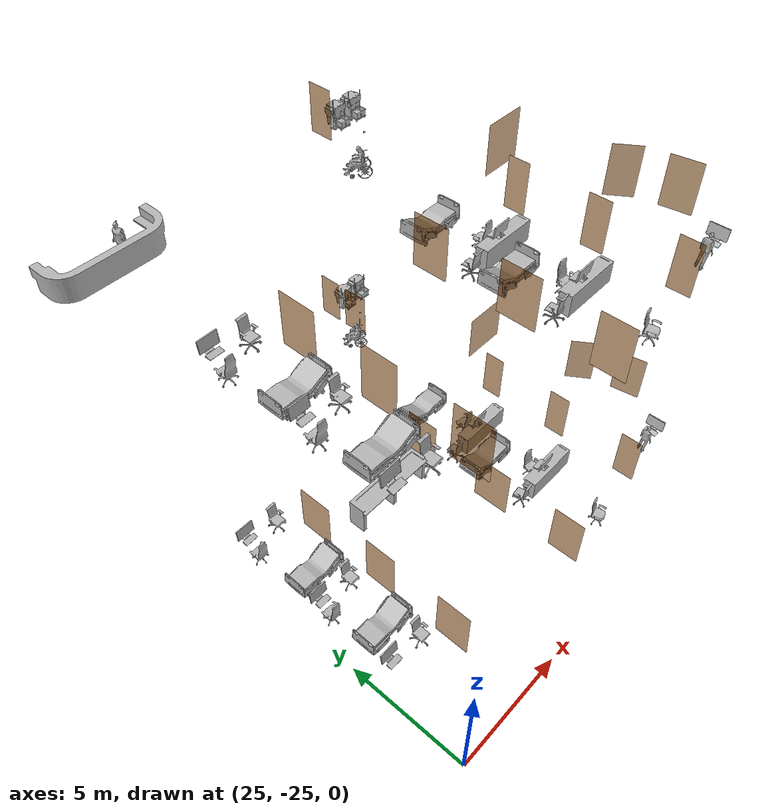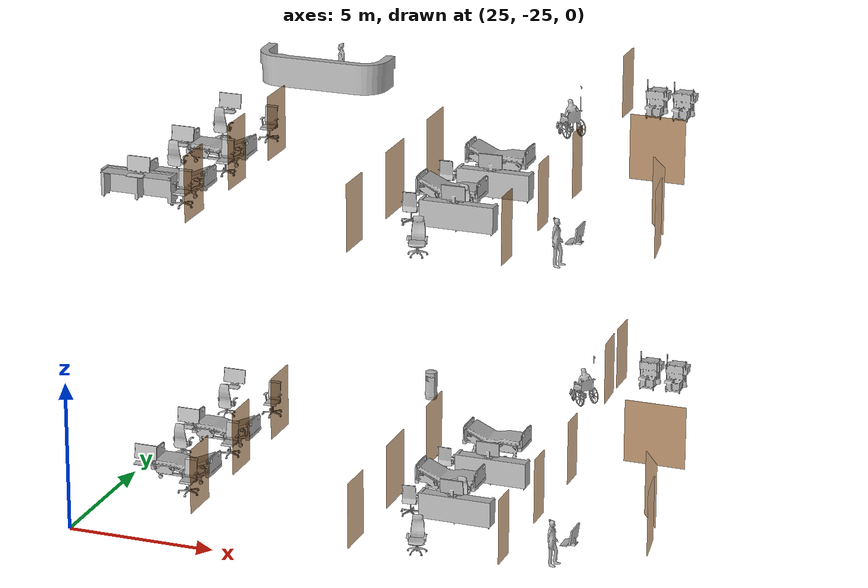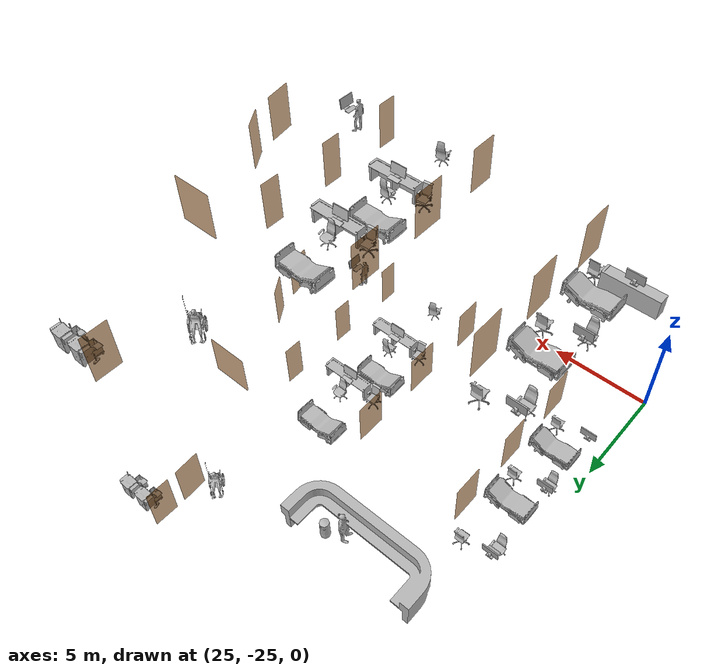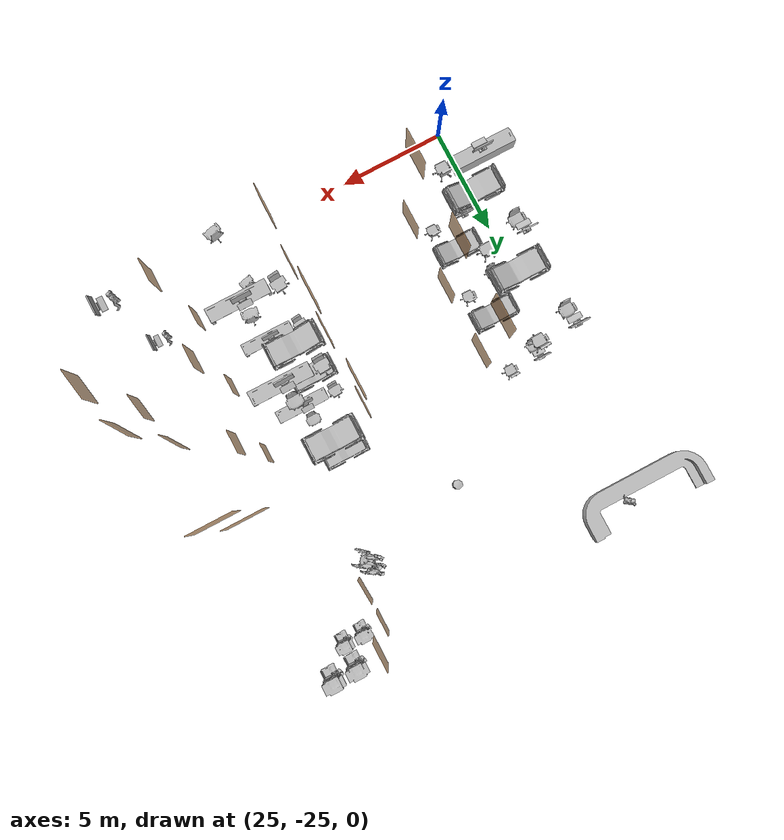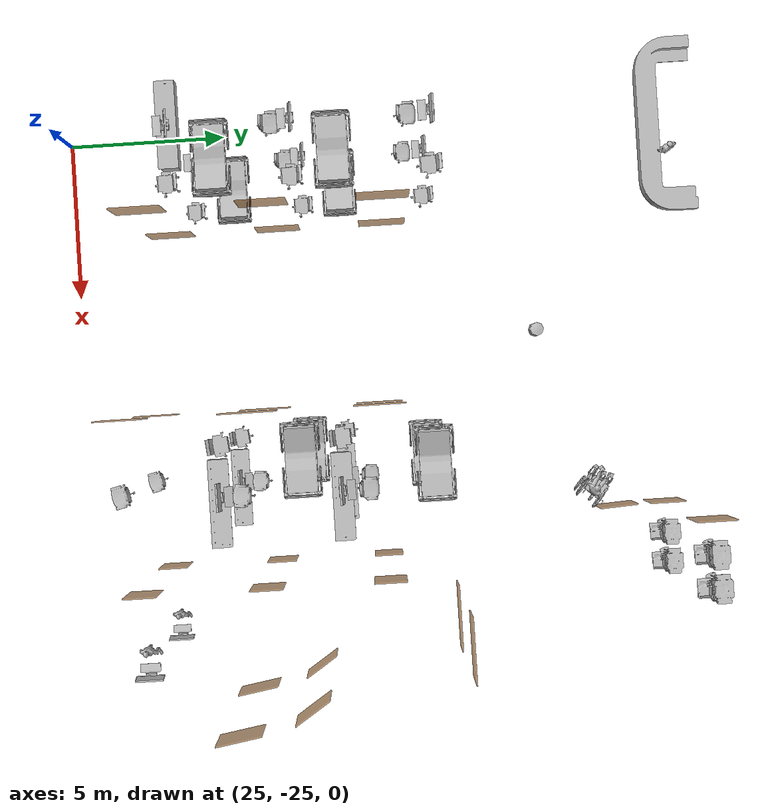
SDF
<sdf version="1.7">
 <world name="sim_world">
  <include>
   <name>OpenRobotics/CGMVanguard_14</name>
   <uri>model://CGMVanguard</uri>
   <pose>26.872747202030713 -19.778627745086744 0.0 0 0 -3.1416</pose>
   <static>True</static>
  </include>
  <include>
   <name>OpenRobotics/CGMVanguard_15</name>
   <uri>model://CGMVanguard</uri>
   <pose>26.839310026537465 -16.334087150494224 0.0 0 0 -3.1416</pose>
   <static>True</static>
  </include>
  <include>
   <name>OpenRobotics/CGMVanguard_19</name>
   <uri>model://CGMVanguard</uri>
   <pose>35.31313026422064 -17.750913426406694 0.0 0 0 0.0</pose>
   <static>True</static>
  </include>
  <include>
   <name>OpenRobotics/CGMVanguard_20</name>
   <uri>model://CGMVanguard</uri>
   <pose>35.63772931810318 -13.985596707818942 0.0 0 0 0.0</pose>
   <static>True</static>
  </include>
  <include>
   <name>OpenRobotics/NurseTable_27</name>
   <uri>model://NurseTable</uri>
   <pose>36.48273143340644 -16.664339833083357 0.0 0 0 -3.1416</pose>
   <static>True</static>
  </include>
  <include>
   <name>OpenRobotics/NurseTable_28</name>
   <uri>model://NurseTable</uri>
   <pose>36.470858813122604 -20.10966116687821 0.0 0 0 -3.1416</pose>
   <static>True</static>
  </include>
  <include>
   <name>OpenRobotics/DeskChair_23</name>
   <uri>model://DeskChair</uri>
   <pose>25.907026652821067 -18.080816122456845 0.0 0 0 1.5708</pose>
   <static>True</static>
  </include>
  <include>
   <name>OpenRobotics/DeskChair_26</name>
   <uri>model://DeskChair</uri>
   <pose>25.87692781046885 -14.223318333910248 0.0 0 0 1.5708</pose>
   <static>True</static>
  </include>
  <include>
   <name>OpenRobotics/DeskChair_27</name>
   <uri>model://DeskChair</uri>
   <pose>36.313041806084414 -19.441375331718028 0.0 0 0 -1.6777</pose>
   <static>True</static>
  </include>
  <include>
   <name>OpenRobotics/DeskChair_28</name>
   <uri>model://DeskChair</uri>
   <pose>36.12706434367912 -22.8408484289066 0.0 0 0 -1.3396</pose>
   <static>True</static>
  </include>
  <include>
   <name>OpenRobotics/OfficeChairGrey_25</name>
   <uri>model://OfficeChairGrey</uri>
   <pose>34.84872504903661 -19.89651936463984 0.0 0 0 -3.0358</pose>
   <static>True</static>
  </include>
  <include>
   <name>OpenRobotics/OfficeChairGrey_26</name>
   <uri>model://OfficeChairGrey</uri>
   <pose>34.83639475404795 -16.457578554670988 0.0 0 0 -3.0878</pose>
   <static>True</static>
  </include>
  <include>
   <name>OpenRobotics/OfficeChairGrey_27</name>
   <uri>model://OfficeChairGrey</uri>
   <pose>27.337287027422047 -13.74712126456676 0.0 0 0 0.0294</pose>
   <static>True</static>
  </include>
  <include>
   <name>OpenRobotics/OfficeChairGrey_39</name>
   <uri>model://OfficeChairGrey</uri>
   <pose>27.426022076074023 -21.14637513941773 0.0 0 0 0.0101</pose>
   <static>True</static>
  </include>
  <include>
   <name>OpenRobotics/OfficeChairGrey_40</name>
   <uri>model://OfficeChairGrey</uri>
   <pose>27.414930194992525 -17.663066805122895 0.0 0 0 0.0035</pose>
   <static>True</static>
  </include>
  <include>
   <name>OpenRobotics/MonitorAndKeyboard_24</name>
   <uri>model://MonitorAndKeyboard</uri>
   <pose>25.850571131879565 -13.500649975000973 0.86 0 0 1.5708</pose>
   <static>True</static>
  </include>
  <include>
   <name>OpenRobotics/MonitorAndKeyboard_25</name>
   <uri>model://MonitorAndKeyboard</uri>
   <pose>25.844405984385237 -17.44499826929735 0.86 0 0 1.5708</pose>
   <static>True</static>
  </include>
  <include>
   <name>OpenRobotics/MonitorAndKeyboard_26</name>
   <uri>model://MonitorAndKeyboard</uri>
   <pose>25.832075689396586 -20.914791738779297 0.86 0 0 1.5708</pose>
   <static>True</static>
  </include>
  <include>
   <name>OpenRobotics/MonitorAndKeyboard_42</name>
   <uri>model://MonitorAndKeyboard</uri>
   <pose>36.30639206184381 -20.090115764778293 0.86 0 0 -1.5616</pose>
   <static>True</static>
  </include>
  <include>
   <name>OpenRobotics/MonitorAndKeyboard_43</name>
   <uri>model://MonitorAndKeyboard</uri>
   <pose>36.32922195300184 -16.652521056882442 0.86 0 0 -1.5427</pose>
   <static>True</static>
  </include>
  <include>
   <name>OpenRobotics/MonitorAndKeyboard_50</name>
   <uri>model://MonitorAndKeyboard</uri>
   <pose>41.185473635629435 -22.269643475250973 0.86 0 0 0.0</pose>
   <static>True</static>
  </include>
  <include>
   <name>OpenRobotics/DeskChair_49</name>
   <uri>model://DeskChair</uri>
   <pose>36.319933848698156 -15.891569555017128 0.0 0 0 1.5708</pose>
   <static>True</static>
  </include>
  <include>
   <name>OpenRobotics/LitterBin_6</name>
   <uri>model://LitterBin</uri>
   <pose>31.935140956117102 -10.197261643782939 0.0 0 0 1.5708</pose>
   <static>True</static>
  </include>
  <include>
   <name>OpenRobotics/PatientWheelChair_6</name>
   <uri>model://PatientWheelChair</uri>
   <pose>37.023164493673356 -8.670889581169963 0.0 0 0 -2.2818</pose>
   <static>True</static>
  </include>
  <include>
   <name>OpenRobotics/Scrubs_6</name>
   <uri>model://Scrubs</uri>
   <pose>40.47298180839202 -22.30929964232147 0.0 0 0 0.0</pose>
   <static>True</static>
  </include>
  <include>
   <name>OpenRobotics/MopCart2</name>
   <uri>model://MopCart2</uri>
   <pose>39.73055267105114 -6.423976000923047 0.0 0 0 1.5708</pose>
   <static>True</static>
  </include>
  <include>
   <name>OpenRobotics/MopCart2_2</name>
   <uri>model://MopCart2</uri>
   <pose>38.77756624745206 -6.447505865159038 0.0 0 0 1.5708</pose>
   <static>True</static>
  </include>
  <model name="L1_left_consult_rm_3_outer">
   <pose>28.179085419791573 -21.845877081650727 0.0 0 0 1.5707963267948966</pose>
   <static>true</static>
   <link name="right">
    <pose>0 0 1.11 0 0 0</pose>
    <visual name="right_visual">
     <geometry><box><size>1.4299792315680138 0.03 2.2</size></box></geometry>
     <material>
      <ambient>0.5 0.25 0 0.6</ambient>
      <diffuse>0.5 0.25 0 0.6</diffuse>
      <pbr><metal><metalness>0.0</metalness></metal></pbr>
     </material>
    </visual>
    <collision name="right_collision">
     <geometry><box><size>1.4299792315680138 0.03 2.2</size></box></geometry>
     <surface><contact><collide_bitmask>0x02</collide_bitmask></contact></surface>
    </collision>
    <inertial>
     <mass>50.0</mass>
     <inertia><ixx>20.17041666666667</ixx><iyy>28.686835844649366</iyy><izz>8.523919177982698</izz></inertia>
    </inertial>
   </link>
   <joint name="right_joint" type="prismatic">
    <parent>world</parent>
    <child>right</child>
    <axis>
     <xyz>1 0 0</xyz>
     <limit><lower>0.0</lower><upper>1.4399792315680138</upper><effort>500.0</effort></limit>
    </axis>
   </joint>
  </model>
  <model name="L1_left_consult_rm_2_outer">
   <pose>28.179085419791573 -18.38420060766895 0.0 0 0 1.5707963267948966</pose>
   <static>true</static>
   <link name="right">
    <pose>0 0 1.11 0 0 0</pose>
    <visual name="right_visual">
     <geometry><box><size>1.3918306988192783 0.03 2.2</size></box></geometry>
     <material>
      <ambient>0.5 0.25 0 0.6</ambient>
      <diffuse>0.5 0.25 0 0.6</diffuse>
      <pbr><metal><metalness>0.0</metalness></metal></pbr>
     </material>
    </visual>
    <collision name="right_collision">
     <geometry><box><size>1.3918306988192783 0.03 2.2</size></box></geometry>
     <surface><contact><collide_bitmask>0x02</collide_bitmask></contact></surface>
    </collision>
    <inertial>
     <mass>50.0</mass>
     <inertia><ixx>20.17041666666667</ixx><iyy>28.23830289239901</iyy><izz>8.075386225732336</izz></inertia>
    </inertial>
   </link>
   <joint name="right_joint" type="prismatic">
    <parent>world</parent>
    <child>right</child>
    <axis>
     <xyz>1 0 0</xyz>
     <limit><lower>0.0</lower><upper>1.4018306988192784</upper><effort>500.0</effort></limit>
    </axis>
   </joint>
  </model>
  <model name="L1_left_consult_rm_1_outer">
   <pose>28.179085419791573 -15.017895465559029 0.0 0 0 -1.5707963267948966</pose>
   <static>true</static>
   <link name="right">
    <pose>0 0 1.11 0 0 0</pose>
    <visual name="right_visual">
     <geometry><box><size>1.4871885696703975 0.03 2.2</size></box></geometry>
     <material>
      <ambient>0.5 0.25 0 0.6</ambient>
      <diffuse>0.5 0.25 0 0.6</diffuse>
      <pbr><metal><metalness>0.0</metalness></metal></pbr>
     </material>
    </visual>
    <collision name="right_collision">
     <geometry><box><size>1.4871885696703975 0.03 2.2</size></box></geometry>
     <surface><contact><collide_bitmask>0x02</collide_bitmask></contact></surface>
    </collision>
    <inertial>
     <mass>50.0</mass>
     <inertia><ixx>20.17041666666667</ixx><iyy>29.38220767399285</iyy><izz>9.219291007326179</izz></inertia>
    </inertial>
   </link>
   <joint name="right_joint" type="prismatic">
    <parent>world</parent>
    <child>right</child>
    <axis>
     <xyz>1 0 0</xyz>
     <limit><lower>0.0</lower><upper>1.4971885696703975</upper><effort>500.0</effort></limit>
    </axis>
   </joint>
  </model>
  <model name="L1_right_consult_rm_11_outer">
   <pose>33.97311257259339 -22.67927579708475 0.0 0 0 -1.5707963267948966</pose>
   <static>true</static>
   <link name="right">
    <pose>0 0 1.11 0 0 0</pose>
    <visual name="right_visual">
     <geometry><box><size>1.3049532710280383 0.03 2.2</size></box></geometry>
     <material>
      <ambient>0.5 0.25 0 0.6</ambient>
      <diffuse>0.5 0.25 0 0.6</diffuse>
      <pbr><metal><metalness>0.0</metalness></metal></pbr>
     </material>
    </visual>
    <collision name="right_collision">
     <geometry><box><size>1.3049532710280383 0.03 2.2</size></box></geometry>
     <surface><contact><collide_bitmask>0x02</collide_bitmask></contact></surface>
    </collision>
    <inertial>
     <mass>50.0</mass>
     <inertia><ixx>20.17041666666667</ixx><iyy>27.26209599819491</iyy><izz>7.099179331528236</izz></inertia>
    </inertial>
   </link>
   <joint name="right_joint" type="prismatic">
    <parent>world</parent>
    <child>right</child>
    <axis>
     <xyz>1 0 0</xyz>
     <limit><lower>0.0</lower><upper>1.3149532710280383</upper><effort>500.0</effort></limit>
    </axis>
   </joint>
  </model>
  <model name="L1_right_consult_rm_12_outer">
   <pose>33.97311257259339 -19.137196646282852 0.0 0 0 -1.5707963267948966</pose>
   <static>true</static>
   <link name="right">
    <pose>0 0 1.11 0 0 0</pose>
    <visual name="right_visual">
     <geometry><box><size>1.5655586323602984 0.03 2.2</size></box></geometry>
     <material>
      <ambient>0.5 0.25 0 0.6</ambient>
      <diffuse>0.5 0.25 0 0.6</diffuse>
      <pbr><metal><metalness>0.0</metalness></metal></pbr>
     </material>
    </visual>
    <collision name="right_collision">
     <geometry><box><size>1.5655586323602984 0.03 2.2</size></box></geometry>
     <surface><contact><collide_bitmask>0x02</collide_bitmask></contact></surface>
    </collision>
    <inertial>
     <mass>50.0</mass>
     <inertia><ixx>20.17041666666667</ixx><iyy>30.379057630657705</iyy><izz>10.216140963991034</izz></inertia>
    </inertial>
   </link>
   <joint name="right_joint" type="prismatic">
    <parent>world</parent>
    <child>right</child>
    <axis>
     <xyz>1 0 0</xyz>
     <limit><lower>0.0</lower><upper>1.5755586323602984</upper><effort>500.0</effort></limit>
    </axis>
   </joint>
  </model>
  <model name="L1_right_consult_rm_13_outer">
   <pose>33.97311257259339 -15.447046267451267 0.0 0 0 -1.5707963267948966</pose>
   <static>true</static>
   <link name="right">
    <pose>0 0 1.11 0 0 0</pose>
    <visual name="right_visual">
     <geometry><box><size>1.4589473481789168 0.03 2.2</size></box></geometry>
     <material>
      <ambient>0.5 0.25 0 0.6</ambient>
      <diffuse>0.5 0.25 0 0.6</diffuse>
      <pbr><metal><metalness>0.0</metalness></metal></pbr>
     </material>
    </visual>
    <collision name="right_collision">
     <geometry><box><size>1.4589473481789168 0.03 2.2</size></box></geometry>
     <surface><contact><collide_bitmask>0x02</collide_bitmask></contact></surface>
    </collision>
    <inertial>
     <mass>50.0</mass>
     <inertia><ixx>20.17041666666667</ixx><iyy>29.035530686492898</iyy><izz>8.872614019826223</izz></inertia>
    </inertial>
   </link>
   <joint name="right_joint" type="prismatic">
    <parent>world</parent>
    <child>right</child>
    <axis>
     <xyz>1 0 0</xyz>
     <limit><lower>0.0</lower><upper>1.4689473481789168</upper><effort>500.0</effort></limit>
    </axis>
   </joint>
  </model>
  <model name="L1_cleaning_supplies">
   <pose>37.73509095804011 -6.428418137763938 0.0 0 0 1.5707963267948966</pose>
   <static>true</static>
   <link name="left">
    <pose>0 0 1.11 0 0 0</pose>
    <visual name="left_visual">
     <geometry><box><size>1.1157720856890128 0.03 2.2</size></box></geometry>
     <material>
      <ambient>0.5 0.25 0 0.6</ambient>
      <diffuse>0.5 0.25 0 0.6</diffuse>
      <pbr><metal><metalness>0.0</metalness></metal></pbr>
     </material>
    </visual>
    <collision name="left_collision">
     <geometry><box><size>1.1157720856890128 0.03 2.2</size></box></geometry>
     <surface><contact><collide_bitmask>0x02</collide_bitmask></contact></surface>
    </collision>
    <inertial>
     <mass>50.0</mass>
     <inertia><ixx>20.17041666666667</ixx><iyy>25.35394728001171</iyy><izz>5.19103061334504</izz></inertia>
    </inertial>
   </link>
   <joint name="left_joint" type="revolute">
    <parent>world</parent>
    <child>left</child>
    <axis><xyz>0 0 1</xyz><limit><lower>-1.57</lower><upper>0</upper></limit></axis>
    <pose>0.5628860428445064 0 0 0 0 0</pose>
   </joint>
  </model>
  <model name="L1_wc_2">
   <pose>37.76922810661132 -8.000907657397798 0.0 0 0 1.6272475606047323</pose>
   <static>true</static>
   <link name="left">
    <pose>0 0 1.11 0 0 0</pose>
    <visual name="left_visual">
     <geometry><box><size>1.2000811286351407 0.03 2.2</size></box></geometry>
     <material>
      <ambient>0.5 0.25 0 0.6</ambient>
      <diffuse>0.5 0.25 0 0.6</diffuse>
      <pbr><metal><metalness>0.0</metalness></metal></pbr>
     </material>
    </visual>
    <collision name="left_collision">
     <geometry><box><size>1.2000811286351407 0.03 2.2</size></box></geometry>
     <surface><contact><collide_bitmask>0x02</collide_bitmask></contact></surface>
    </collision>
    <inertial>
     <mass>50.0</mass>
     <inertia><ixx>20.17041666666667</ixx><iyy>26.167477980442474</iyy><izz>6.004561313775805</izz></inertia>
    </inertial>
   </link>
   <joint name="left_joint" type="revolute">
    <parent>world</parent>
    <child>left</child>
    <axis><xyz>0 0 1</xyz><limit><lower>-1.57</lower><upper>0</upper></limit></axis>
    <pose>0.6050405643175704 0 0 0 0 0</pose>
   </joint>
  </model>
  <model name="L1_right_consult_rm_11_inner">
   <pose>38.85542479135422 -22.34758278527751 0.0 0 0 1.5707963267948966</pose>
   <static>true</static>
   <link name="right">
    <pose>0 0 1.11 0 0 0</pose>
    <visual name="right_visual">
     <geometry><box><size>0.9258640052305702 0.03 2.2</size></box></geometry>
     <material>
      <ambient>0.5 0.25 0 0.6</ambient>
      <diffuse>0.5 0.25 0 0.6</diffuse>
      <pbr><metal><metalness>0.0</metalness></metal></pbr>
     </material>
    </visual>
    <collision name="right_collision">
     <geometry><box><size>0.9258640052305702 0.03 2.2</size></box></geometry>
     <surface><contact><collide_bitmask>0x02</collide_bitmask></contact></surface>
    </collision>
    <inertial>
     <mass>50.0</mass>
     <inertia><ixx>20.17041666666667</ixx><iyy>23.738433984089976</iyy><izz>3.575517317423306</izz></inertia>
    </inertial>
   </link>
   <joint name="right_joint" type="prismatic">
    <parent>world</parent>
    <child>right</child>
    <axis>
     <xyz>1 0 0</xyz>
     <limit><lower>0.0</lower><upper>0.9358640052305702</upper><effort>500.0</effort></limit>
    </axis>
   </joint>
  </model>
  <model name="L1_right_consult_rm_2_inner">
   <pose>42.93730433444871 -19.879491173416426 0.0 0 0 -1.4067292151199144</pose>
   <static>true</static>
   <link name="left">
    <pose>0 0 1.11 0 0 0</pose>
    <visual name="left_visual">
     <geometry><box><size>1.3117728040741947 0.03 2.2</size></box></geometry>
     <material>
      <ambient>0.5 0.25 0 0.6</ambient>
      <diffuse>0.5 0.25 0 0.6</diffuse>
      <pbr><metal><metalness>0.0</metalness></metal></pbr>
     </material>
    </visual>
    <collision name="left_collision">
     <geometry><box><size>1.3117728040741947 0.03 2.2</size></box></geometry>
     <surface><contact><collide_bitmask>0x02</collide_bitmask></contact></surface>
    </collision>
    <inertial>
     <mass>50.0</mass>
     <inertia><ixx>20.17041666666667</ixx><iyy>27.336449539619487</iyy><izz>7.173532872952816</izz></inertia>
    </inertial>
   </link>
   <joint name="left_joint" type="revolute">
    <parent>world</parent>
    <child>left</child>
    <axis><xyz>0 0 1</xyz><limit><lower>-1.57</lower><upper>0</upper></limit></axis>
    <pose>0.6608864020370974 0 0 0 0 0</pose>
   </joint>
  </model>
  <model name="L1_right_consult_rm_12_inner">
   <pose>38.85542479135422 -18.86473212568749 0.0 0 0 1.5707963267948966</pose>
   <static>true</static>
   <link name="right">
    <pose>0 0 1.11 0 0 0</pose>
    <visual name="right_visual">
     <geometry><box><size>0.9258640052305667 0.03 2.2</size></box></geometry>
     <material>
      <ambient>0.5 0.25 0 0.6</ambient>
      <diffuse>0.5 0.25 0 0.6</diffuse>
      <pbr><metal><metalness>0.0</metalness></metal></pbr>
     </material>
    </visual>
    <collision name="right_collision">
     <geometry><box><size>0.9258640052305667 0.03 2.2</size></box></geometry>
     <surface><contact><collide_bitmask>0x02</collide_bitmask></contact></surface>
    </collision>
    <inertial>
     <mass>50.0</mass>
     <inertia><ixx>20.17041666666667</ixx><iyy>23.738433984089948</iyy><izz>3.5755173174232784</izz></inertia>
    </inertial>
   </link>
   <joint name="right_joint" type="prismatic">
    <parent>world</parent>
    <child>right</child>
    <axis>
     <xyz>1 0 0</xyz>
     <limit><lower>0.0</lower><upper>0.9358640052305667</upper><effort>500.0</effort></limit>
    </axis>
   </joint>
  </model>
  <model name="L1_right_consult_rm_1_inner">
   <pose>42.30254990192688 -17.806843967539727 0.0 0 0 -0.9867955334441539</pose>
   <static>true</static>
   <link name="left">
    <pose>0 0 1.11 0 0 0</pose>
    <visual name="left_visual">
     <geometry><box><size>1.1804239723782883 0.03 2.2</size></box></geometry>
     <material>
      <ambient>0.5 0.25 0 0.6</ambient>
      <diffuse>0.5 0.25 0 0.6</diffuse>
      <pbr><metal><metalness>0.0</metalness></metal></pbr>
     </material>
    </visual>
    <collision name="left_collision">
     <geometry><box><size>1.1804239723782883 0.03 2.2</size></box></geometry>
     <surface><contact><collide_bitmask>0x02</collide_bitmask></contact></surface>
    </collision>
    <inertial>
     <mass>50.0</mass>
     <inertia><ixx>20.17041666666667</ixx><iyy>25.972503144022248</iyy><izz>5.809586477355575</izz></inertia>
    </inertial>
   </link>
   <joint name="left_joint" type="revolute">
    <parent>world</parent>
    <child>left</child>
    <axis><xyz>0 0 1</xyz><limit><lower>-1.57</lower><upper>0</upper></limit></axis>
    <pose>0.5952119861891442 0 0 0 0 0</pose>
   </joint>
  </model>
  <model name="L1_right_consult_rm_13_inner">
   <pose>38.85542479135422 -15.441109957309347 0.0 0 0 1.5707963267948966</pose>
   <static>true</static>
   <link name="right">
    <pose>0 0 1.11 0 0 0</pose>
    <visual name="right_visual">
     <geometry><box><size>0.90217260874582 0.03 2.2</size></box></geometry>
     <material>
      <ambient>0.5 0.25 0 0.6</ambient>
      <diffuse>0.5 0.25 0 0.6</diffuse>
      <pbr><metal><metalness>0.0</metalness></metal></pbr>
     </material>
    </visual>
    <collision name="right_collision">
     <geometry><box><size>0.90217260874582 0.03 2.2</size></box></geometry>
     <surface><contact><collide_bitmask>0x02</collide_bitmask></contact></surface>
    </collision>
    <inertial>
     <mass>50.0</mass>
     <inertia><ixx>20.17041666666667</ixx><iyy>23.557980899880164</iyy><izz>3.395064233213493</izz></inertia>
    </inertial>
   </link>
   <joint name="right_joint" type="prismatic">
    <parent>world</parent>
    <child>right</child>
    <axis>
     <xyz>1 0 0</xyz>
     <limit><lower>0.0</lower><upper>0.91217260874582</upper><effort>500.0</effort></limit>
    </axis>
   </joint>
  </model>
  <model name="L1_right_inner">
   <pose>41.049800007692056 -13.271597246259772 0.0 0 0 3.141592653589793</pose>
   <link name="right">
    <pose>0 0 1.11 0 0 0</pose>
    <visual name="right_visual">
     <geometry><box><size>2.1329137340871522 0.03 2.2</size></box></geometry>
     <material>
      <ambient>0.5 0.25 0 0.6</ambient>
      <diffuse>0.5 0.25 0 0.6</diffuse>
      <pbr><metal><metalness>0.0</metalness></metal></pbr>
     </material>
    </visual>
    <collision name="right_collision">
     <geometry><box><size>2.1329137340871522 0.03 2.2</size></box></geometry>
     <surface><contact><collide_bitmask>0x02</collide_bitmask></contact></surface>
    </collision>
    <inertial>
     <mass>50.0</mass>
     <inertia><ixx>20.17041666666667</ixx><iyy>39.12217082107333</iyy><izz>18.95925415440666</izz></inertia>
    </inertial>
   </link>
   <joint name="right_joint" type="prismatic">
    <parent>world</parent>
    <child>right</child>
    <axis>
     <xyz>1 0 0</xyz>
     <limit><lower>0.0</lower><upper>2.142913734087152</upper><effort>500.0</effort></limit>
    </axis>
   </joint>
   <plugin name="door" filename="libdoor.so">
    <v_max_door>0.2</v_max_door>
    <a_max_door>0.2</a_max_door>
    <a_nom_door>0.08</a_nom_door>
    <dx_min_door>0.001</dx_min_door>
    <f_max_door>100.0</f_max_door>
    <door name="L1_right_inner" type="SlidingDoor" left_joint_name="empty_joint" right_joint_name="right_joint"/>
   </plugin>
  </model>
  <include>
   <name>OpenRobotics/CGMVanguard_32</name>
   <uri>model://CGMVanguard</uri>
   <pose>26.872747202030713 -19.778627745086744 10.0 0 0 -3.1416</pose>
   <static>True</static>
  </include>
  <include>
   <name>OpenRobotics/CGMVanguard_33</name>
   <uri>model://CGMVanguard</uri>
   <pose>26.839310026537465 -16.334087150494224 10.0 0 0 -3.1416</pose>
   <static>True</static>
  </include>
  <include>
   <name>OpenRobotics/CGMVanguard_36</name>
   <uri>model://CGMVanguard</uri>
   <pose>35.31313026422064 -17.750913426406694 10.0 0 0 0.0</pose>
   <static>True</static>
  </include>
  <include>
   <name>OpenRobotics/CGMVanguard_37</name>
   <uri>model://CGMVanguard</uri>
   <pose>35.63772931810318 -13.985596707818942 10.0 0 0 0.0</pose>
   <static>True</static>
  </include>
  <include>
   <name>OpenRobotics/NurseTable_65</name>
   <uri>model://NurseTable</uri>
   <pose>25.825910541902257 -20.877827775854794 10.0 0 0 -0.0008</pose>
   <static>True</static>
  </include>
  <include>
   <name>OpenRobotics/NurseTable_67</name>
   <uri>model://NurseTable</uri>
   <pose>36.48273143340644 -16.664339833083357 10.0 0 0 -3.1416</pose>
   <static>True</static>
  </include>
  <include>
   <name>OpenRobotics/NurseTable_68</name>
   <uri>model://NurseTable</uri>
   <pose>36.470858813122604 -20.10966116687821 10.0 0 0 -3.1416</pose>
   <static>True</static>
  </include>
  <include>
   <name>OpenRobotics/DeskChair_63</name>
   <uri>model://DeskChair</uri>
   <pose>25.907026652821067 -18.080816122456845 10.0 0 0 1.5708</pose>
   <static>True</static>
  </include>
  <include>
   <name>OpenRobotics/DeskChair_66</name>
   <uri>model://DeskChair</uri>
   <pose>25.87692781046885 -14.223318333910248 10.0 0 0 1.5708</pose>
   <static>True</static>
  </include>
  <include>
   <name>OpenRobotics/DeskChair_67</name>
   <uri>model://DeskChair</uri>
   <pose>36.313041806084414 -19.441375331718028 10.0 0 0 -1.6777</pose>
   <static>True</static>
  </include>
  <include>
   <name>OpenRobotics/DeskChair_68</name>
   <uri>model://DeskChair</uri>
   <pose>36.12706434367912 -22.8408484289066 10.0 0 0 -1.3396</pose>
   <static>True</static>
  </include>
  <include>
   <name>OpenRobotics/OfficeChairGrey_70</name>
   <uri>model://OfficeChairGrey</uri>
   <pose>34.84872504903661 -19.89651936463984 10.0 0 0 -3.0358</pose>
   <static>True</static>
  </include>
  <include>
   <name>OpenRobotics/OfficeChairGrey_71</name>
   <uri>model://OfficeChairGrey</uri>
   <pose>34.83639475404795 -16.457578554670988 10.0 0 0 -3.0878</pose>
   <static>True</static>
  </include>
  <include>
   <name>OpenRobotics/OfficeChairGrey_72</name>
   <uri>model://OfficeChairGrey</uri>
   <pose>27.337287027422047 -13.74712126456676 10.0 0 0 0.0294</pose>
   <static>True</static>
  </include>
  <include>
   <name>OpenRobotics/OfficeChairGrey_79</name>
   <uri>model://OfficeChairGrey</uri>
   <pose>27.426022076074023 -21.14637513941773 10.0 0 0 0.0101</pose>
   <static>True</static>
  </include>
  <include>
   <name>OpenRobotics/OfficeChairGrey_80</name>
   <uri>model://OfficeChairGrey</uri>
   <pose>27.414930194992525 -17.663066805122895 10.0 0 0 0.0035</pose>
   <static>True</static>
  </include>
  <include>
   <name>OpenRobotics/MonitorAndKeyboard_67</name>
   <uri>model://MonitorAndKeyboard</uri>
   <pose>25.850571131879565 -13.500649975000973 10.86 0 0 1.5708</pose>
   <static>True</static>
  </include>
  <include>
   <name>OpenRobotics/MonitorAndKeyboard_68</name>
   <uri>model://MonitorAndKeyboard</uri>
   <pose>25.844405984385237 -17.44499826929735 10.86 0 0 1.5708</pose>
   <static>True</static>
  </include>
  <include>
   <name>OpenRobotics/MonitorAndKeyboard_69</name>
   <uri>model://MonitorAndKeyboard</uri>
   <pose>25.832075689396586 -20.914791738779297 10.86 0 0 1.5708</pose>
   <static>True</static>
  </include>
  <include>
   <name>OpenRobotics/MonitorAndKeyboard_85</name>
   <uri>model://MonitorAndKeyboard</uri>
   <pose>36.30639206184381 -20.090115764778293 10.86 0 0 -1.5616</pose>
   <static>True</static>
  </include>
  <include>
   <name>OpenRobotics/MonitorAndKeyboard_86</name>
   <uri>model://MonitorAndKeyboard</uri>
   <pose>36.32922195300184 -16.652521056882442 10.86 0 0 -1.5427</pose>
   <static>True</static>
  </include>
  <include>
   <name>OpenRobotics/MonitorAndKeyboard_90</name>
   <uri>model://MonitorAndKeyboard</uri>
   <pose>41.185473635629435 -22.269643475250973 10.86 0 0 0.0</pose>
   <static>True</static>
  </include>
  <include>
   <name>OpenRobotics/DeskChair_85</name>
   <uri>model://DeskChair</uri>
   <pose>36.319933848698156 -15.891569555017128 10.0 0 0 1.5708</pose>
   <static>True</static>
  </include>
  <include>
   <name>OpenRobotics/PatientWheelChair_13</name>
   <uri>model://PatientWheelChair</uri>
   <pose>36.64711741856085 -9.50243067574325 10.0 0 0 -2.2818</pose>
   <static>True</static>
  </include>
  <include>
   <name>OpenRobotics/Scrubs_9</name>
   <uri>model://Scrubs</uri>
   <pose>40.47298180839202 -22.30929964232147 10.0 0 0 0.0</pose>
   <static>True</static>
  </include>
  <include>
   <name>OpenRobotics/MopCart2_4</name>
   <uri>model://MopCart2</uri>
   <pose>39.73055267105114 -6.423976000923047 10.0 0 0 1.5708</pose>
   <static>True</static>
  </include>
  <include>
   <name>OpenRobotics/MopCart2_5</name>
   <uri>model://MopCart2</uri>
   <pose>38.77756624745206 -6.447505865159038 10.0 0 0 1.5708</pose>
   <static>True</static>
  </include>
  <include>
   <name>OpenRobotics/NurseDesk_2</name>
   <uri>model://NurseDesk</uri>
   <pose>26.680739202338398 -7.400276912426452 10.0 0 0 0.0</pose>
   <static>True</static>
  </include>
  <include>
   <name>OpenRobotics/Scrubs_14</name>
   <uri>model://Scrubs</uri>
   <pose>27.314026383600652 -7.011064959040043 10.0 0 0 -2.5713</pose>
   <static>True</static>
  </include>
  <model name="L2_left_consult_rm_3_outer">
   <pose>28.179085419791573 -21.845877081650727 10.0 0 0 1.5707963267948966</pose>
   <static>true</static>
   <link name="right">
    <pose>0 0 1.11 0 0 0</pose>
    <visual name="right_visual">
     <geometry><box><size>1.4299792315680138 0.03 2.2</size></box></geometry>
     <material>
      <ambient>0.5 0.25 0 0.6</ambient>
      <diffuse>0.5 0.25 0 0.6</diffuse>
      <pbr><metal><metalness>0.0</metalness></metal></pbr>
     </material>
    </visual>
    <collision name="right_collision">
     <geometry><box><size>1.4299792315680138 0.03 2.2</size></box></geometry>
     <surface><contact><collide_bitmask>0x02</collide_bitmask></contact></surface>
    </collision>
    <inertial>
     <mass>50.0</mass>
     <inertia><ixx>20.17041666666667</ixx><iyy>28.686835844649366</iyy><izz>8.523919177982698</izz></inertia>
    </inertial>
   </link>
   <joint name="right_joint" type="prismatic">
    <parent>world</parent>
    <child>right</child>
    <axis>
     <xyz>1 0 0</xyz>
     <limit><lower>0.0</lower><upper>1.4399792315680138</upper><effort>500.0</effort></limit>
    </axis>
   </joint>
  </model>
  <model name="L2_left_consult_rm_2_outer">
   <pose>28.179085419791573 -18.38420060766895 10.0 0 0 1.5707963267948966</pose>
   <static>true</static>
   <link name="right">
    <pose>0 0 1.11 0 0 0</pose>
    <visual name="right_visual">
     <geometry><box><size>1.3918306988192783 0.03 2.2</size></box></geometry>
     <material>
      <ambient>0.5 0.25 0 0.6</ambient>
      <diffuse>0.5 0.25 0 0.6</diffuse>
      <pbr><metal><metalness>0.0</metalness></metal></pbr>
     </material>
    </visual>
    <collision name="right_collision">
     <geometry><box><size>1.3918306988192783 0.03 2.2</size></box></geometry>
     <surface><contact><collide_bitmask>0x02</collide_bitmask></contact></surface>
    </collision>
    <inertial>
     <mass>50.0</mass>
     <inertia><ixx>20.17041666666667</ixx><iyy>28.23830289239901</iyy><izz>8.075386225732336</izz></inertia>
    </inertial>
   </link>
   <joint name="right_joint" type="prismatic">
    <parent>world</parent>
    <child>right</child>
    <axis>
     <xyz>1 0 0</xyz>
     <limit><lower>0.0</lower><upper>1.4018306988192784</upper><effort>500.0</effort></limit>
    </axis>
   </joint>
  </model>
  <model name="L2_left_consult_rm_1_outer">
   <pose>28.179085419791573 -15.017895465559029 10.0 0 0 -1.5707963267948966</pose>
   <static>true</static>
   <link name="right">
    <pose>0 0 1.11 0 0 0</pose>
    <visual name="right_visual">
     <geometry><box><size>1.4871885696703975 0.03 2.2</size></box></geometry>
     <material>
      <ambient>0.5 0.25 0 0.6</ambient>
      <diffuse>0.5 0.25 0 0.6</diffuse>
      <pbr><metal><metalness>0.0</metalness></metal></pbr>
     </material>
    </visual>
    <collision name="right_collision">
     <geometry><box><size>1.4871885696703975 0.03 2.2</size></box></geometry>
     <surface><contact><collide_bitmask>0x02</collide_bitmask></contact></surface>
    </collision>
    <inertial>
     <mass>50.0</mass>
     <inertia><ixx>20.17041666666667</ixx><iyy>29.38220767399285</iyy><izz>9.219291007326179</izz></inertia>
    </inertial>
   </link>
   <joint name="right_joint" type="prismatic">
    <parent>world</parent>
    <child>right</child>
    <axis>
     <xyz>1 0 0</xyz>
     <limit><lower>0.0</lower><upper>1.4971885696703975</upper><effort>500.0</effort></limit>
    </axis>
   </joint>
  </model>
  <model name="L2_right_consult_rm_11_outer">
   <pose>33.97311257259339 -22.67927579708475 10.0 0 0 -1.5707963267948966</pose>
   <static>true</static>
   <link name="right">
    <pose>0 0 1.11 0 0 0</pose>
    <visual name="right_visual">
     <geometry><box><size>1.3049532710280383 0.03 2.2</size></box></geometry>
     <material>
      <ambient>0.5 0.25 0 0.6</ambient>
      <diffuse>0.5 0.25 0 0.6</diffuse>
      <pbr><metal><metalness>0.0</metalness></metal></pbr>
     </material>
    </visual>
    <collision name="right_collision">
     <geometry><box><size>1.3049532710280383 0.03 2.2</size></box></geometry>
     <surface><contact><collide_bitmask>0x02</collide_bitmask></contact></surface>
    </collision>
    <inertial>
     <mass>50.0</mass>
     <inertia><ixx>20.17041666666667</ixx><iyy>27.26209599819491</iyy><izz>7.099179331528236</izz></inertia>
    </inertial>
   </link>
   <joint name="right_joint" type="prismatic">
    <parent>world</parent>
    <child>right</child>
    <axis>
     <xyz>1 0 0</xyz>
     <limit><lower>0.0</lower><upper>1.3149532710280383</upper><effort>500.0</effort></limit>
    </axis>
   </joint>
  </model>
  <model name="L2_right_consult_rm_12_outer">
   <pose>33.97311257259339 -19.137196646282852 10.0 0 0 -1.5707963267948966</pose>
   <static>true</static>
   <link name="right">
    <pose>0 0 1.11 0 0 0</pose>
    <visual name="right_visual">
     <geometry><box><size>1.5655586323602984 0.03 2.2</size></box></geometry>
     <material>
      <ambient>0.5 0.25 0 0.6</ambient>
      <diffuse>0.5 0.25 0 0.6</diffuse>
      <pbr><metal><metalness>0.0</metalness></metal></pbr>
     </material>
    </visual>
    <collision name="right_collision">
     <geometry><box><size>1.5655586323602984 0.03 2.2</size></box></geometry>
     <surface><contact><collide_bitmask>0x02</collide_bitmask></contact></surface>
    </collision>
    <inertial>
     <mass>50.0</mass>
     <inertia><ixx>20.17041666666667</ixx><iyy>30.379057630657705</iyy><izz>10.216140963991034</izz></inertia>
    </inertial>
   </link>
   <joint name="right_joint" type="prismatic">
    <parent>world</parent>
    <child>right</child>
    <axis>
     <xyz>1 0 0</xyz>
     <limit><lower>0.0</lower><upper>1.5755586323602984</upper><effort>500.0</effort></limit>
    </axis>
   </joint>
  </model>
  <model name="L2_right_consult_rm_13_outer">
   <pose>33.97311257259339 -15.447046267451267 10.0 0 0 -1.5707963267948966</pose>
   <static>true</static>
   <link name="right">
    <pose>0 0 1.11 0 0 0</pose>
    <visual name="right_visual">
     <geometry><box><size>1.4589473481789168 0.03 2.2</size></box></geometry>
     <material>
      <ambient>0.5 0.25 0 0.6</ambient>
      <diffuse>0.5 0.25 0 0.6</diffuse>
      <pbr><metal><metalness>0.0</metalness></metal></pbr>
     </material>
    </visual>
    <collision name="right_collision">
     <geometry><box><size>1.4589473481789168 0.03 2.2</size></box></geometry>
     <surface><contact><collide_bitmask>0x02</collide_bitmask></contact></surface>
    </collision>
    <inertial>
     <mass>50.0</mass>
     <inertia><ixx>20.17041666666667</ixx><iyy>29.035530686492898</iyy><izz>8.872614019826223</izz></inertia>
    </inertial>
   </link>
   <joint name="right_joint" type="prismatic">
    <parent>world</parent>
    <child>right</child>
    <axis>
     <xyz>1 0 0</xyz>
     <limit><lower>0.0</lower><upper>1.4689473481789168</upper><effort>500.0</effort></limit>
    </axis>
   </joint>
  </model>
  <model name="L2_right_consult_rm_13_inner">
   <pose>38.85542479135422 -15.441109957309347 10.0 0 0 1.5707963267948966</pose>
   <static>true</static>
   <link name="right">
    <pose>0 0 1.11 0 0 0</pose>
    <visual name="right_visual">
     <geometry><box><size>0.90217260874582 0.03 2.2</size></box></geometry>
     <material>
      <ambient>0.5 0.25 0 0.6</ambient>
      <diffuse>0.5 0.25 0 0.6</diffuse>
      <pbr><metal><metalness>0.0</metalness></metal></pbr>
     </material>
    </visual>
    <collision name="right_collision">
     <geometry><box><size>0.90217260874582 0.03 2.2</size></box></geometry>
     <surface><contact><collide_bitmask>0x02</collide_bitmask></contact></surface>
    </collision>
    <inertial>
     <mass>50.0</mass>
     <inertia><ixx>20.17041666666667</ixx><iyy>23.557980899880164</iyy><izz>3.395064233213493</izz></inertia>
    </inertial>
   </link>
   <joint name="right_joint" type="prismatic">
    <parent>world</parent>
    <child>right</child>
    <axis>
     <xyz>1 0 0</xyz>
     <limit><lower>0.0</lower><upper>0.91217260874582</upper><effort>500.0</effort></limit>
    </axis>
   </joint>
  </model>
  <model name="L2_right_consult_rm_1_inner">
   <pose>42.30254990192688 -17.806843967539727 10.0 0 0 -0.9867955334441539</pose>
   <static>true</static>
   <link name="left">
    <pose>0 0 1.11 0 0 0</pose>
    <visual name="left_visual">
     <geometry><box><size>1.1804239723782883 0.03 2.2</size></box></geometry>
     <material>
      <ambient>0.5 0.25 0 0.6</ambient>
      <diffuse>0.5 0.25 0 0.6</diffuse>
      <pbr><metal><metalness>0.0</metalness></metal></pbr>
     </material>
    </visual>
    <collision name="left_collision">
     <geometry><box><size>1.1804239723782883 0.03 2.2</size></box></geometry>
     <surface><contact><collide_bitmask>0x02</collide_bitmask></contact></surface>
    </collision>
    <inertial>
     <mass>50.0</mass>
     <inertia><ixx>20.17041666666667</ixx><iyy>25.972503144022248</iyy><izz>5.809586477355575</izz></inertia>
    </inertial>
   </link>
   <joint name="left_joint" type="revolute">
    <parent>world</parent>
    <child>left</child>
    <axis><xyz>0 0 1</xyz><limit><lower>-1.57</lower><upper>0</upper></limit></axis>
    <pose>0.5952119861891442 0 0 0 0 0</pose>
   </joint>
  </model>
  <model name="L2_right_consult_rm_12_inner">
   <pose>38.85542479135422 -18.86473212568749 10.0 0 0 1.5707963267948966</pose>
   <static>true</static>
   <link name="right">
    <pose>0 0 1.11 0 0 0</pose>
    <visual name="right_visual">
     <geometry><box><size>0.9258640052305667 0.03 2.2</size></box></geometry>
     <material>
      <ambient>0.5 0.25 0 0.6</ambient>
      <diffuse>0.5 0.25 0 0.6</diffuse>
      <pbr><metal><metalness>0.0</metalness></metal></pbr>
     </material>
    </visual>
    <collision name="right_collision">
     <geometry><box><size>0.9258640052305667 0.03 2.2</size></box></geometry>
     <surface><contact><collide_bitmask>0x02</collide_bitmask></contact></surface>
    </collision>
    <inertial>
     <mass>50.0</mass>
     <inertia><ixx>20.17041666666667</ixx><iyy>23.738433984089948</iyy><izz>3.5755173174232784</izz></inertia>
    </inertial>
   </link>
   <joint name="right_joint" type="prismatic">
    <parent>world</parent>
    <child>right</child>
    <axis>
     <xyz>1 0 0</xyz>
     <limit><lower>0.0</lower><upper>0.9358640052305667</upper><effort>500.0</effort></limit>
    </axis>
   </joint>
  </model>
  <model name="L2_right_consult_rm_11_inner">
   <pose>38.85542479135422 -22.34758278527751 10.0 0 0 1.5707963267948966</pose>
   <static>true</static>
   <link name="right">
    <pose>0 0 1.11 0 0 0</pose>
    <visual name="right_visual">
     <geometry><box><size>0.9258640052305702 0.03 2.2</size></box></geometry>
     <material>
      <ambient>0.5 0.25 0 0.6</ambient>
      <diffuse>0.5 0.25 0 0.6</diffuse>
      <pbr><metal><metalness>0.0</metalness></metal></pbr>
     </material>
    </visual>
    <collision name="right_collision">
     <geometry><box><size>0.9258640052305702 0.03 2.2</size></box></geometry>
     <surface><contact><collide_bitmask>0x02</collide_bitmask></contact></surface>
    </collision>
    <inertial>
     <mass>50.0</mass>
     <inertia><ixx>20.17041666666667</ixx><iyy>23.738433984089976</iyy><izz>3.575517317423306</izz></inertia>
    </inertial>
   </link>
   <joint name="right_joint" type="prismatic">
    <parent>world</parent>
    <child>right</child>
    <axis>
     <xyz>1 0 0</xyz>
     <limit><lower>0.0</lower><upper>0.9358640052305702</upper><effort>500.0</effort></limit>
    </axis>
   </joint>
  </model>
  <model name="L2_right_consult_rm_2_inner">
   <pose>42.93730433444871 -19.879491173416426 10.0 0 0 -1.4067292151199144</pose>
   <static>true</static>
   <link name="left">
    <pose>0 0 1.11 0 0 0</pose>
    <visual name="left_visual">
     <geometry><box><size>1.3117728040741947 0.03 2.2</size></box></geometry>
     <material>
      <ambient>0.5 0.25 0 0.6</ambient>
      <diffuse>0.5 0.25 0 0.6</diffuse>
      <pbr><metal><metalness>0.0</metalness></metal></pbr>
     </material>
    </visual>
    <collision name="left_collision">
     <geometry><box><size>1.3117728040741947 0.03 2.2</size></box></geometry>
     <surface><contact><collide_bitmask>0x02</collide_bitmask></contact></surface>
    </collision>
    <inertial>
     <mass>50.0</mass>
     <inertia><ixx>20.17041666666667</ixx><iyy>27.336449539619487</iyy><izz>7.173532872952816</izz></inertia>
    </inertial>
   </link>
   <joint name="left_joint" type="revolute">
    <parent>world</parent>
    <child>left</child>
    <axis><xyz>0 0 1</xyz><limit><lower>-1.57</lower><upper>0</upper></limit></axis>
    <pose>0.6608864020370974 0 0 0 0 0</pose>
   </joint>
  </model>
  <model name="L2_cleaning_supplies">
   <pose>37.73509095804011 -6.428418137763938 10.0 0 0 1.5707963267948966</pose>
   <static>true</static>
   <link name="left">
    <pose>0 0 1.11 0 0 0</pose>
    <visual name="left_visual">
     <geometry><box><size>1.1157720856890128 0.03 2.2</size></box></geometry>
     <material>
      <ambient>0.5 0.25 0 0.6</ambient>
      <diffuse>0.5 0.25 0 0.6</diffuse>
      <pbr><metal><metalness>0.0</metalness></metal></pbr>
     </material>
    </visual>
    <collision name="left_collision">
     <geometry><box><size>1.1157720856890128 0.03 2.2</size></box></geometry>
     <surface><contact><collide_bitmask>0x02</collide_bitmask></contact></surface>
    </collision>
    <inertial>
     <mass>50.0</mass>
     <inertia><ixx>20.17041666666667</ixx><iyy>25.35394728001171</iyy><izz>5.19103061334504</izz></inertia>
    </inertial>
   </link>
   <joint name="left_joint" type="revolute">
    <parent>world</parent>
    <child>left</child>
    <axis><xyz>0 0 1</xyz><limit><lower>-1.57</lower><upper>0</upper></limit></axis>
    <pose>0.5628860428445064 0 0 0 0 0</pose>
   </joint>
  </model>
  <model name="L2_right_inner">
   <pose>40.88623514480216 -13.271597246259772 10.0 0 0 3.141592653589793</pose>
   <link name="right">
    <pose>0 0 1.11 0 0 0</pose>
    <visual name="right_visual">
     <geometry><box><size>1.8703430637283256 0.03 2.2</size></box></geometry>
     <material>
      <ambient>0.5 0.25 0 0.6</ambient>
      <diffuse>0.5 0.25 0 0.6</diffuse>
      <pbr><metal><metalness>0.0</metalness></metal></pbr>
     </material>
    </visual>
    <collision name="right_collision">
     <geometry><box><size>1.8703430637283256 0.03 2.2</size></box></geometry>
     <surface><contact><collide_bitmask>0x02</collide_bitmask></contact></surface>
    </collision>
    <inertial>
     <mass>50.0</mass>
     <inertia><ixx>20.17041666666667</ixx><iyy>34.74242990015275</iyy><izz>14.579513233486082</izz></inertia>
    </inertial>
   </link>
   <joint name="right_joint" type="prismatic">
    <parent>world</parent>
    <child>right</child>
    <axis>
     <xyz>1 0 0</xyz>
     <limit><lower>0.0</lower><upper>1.8803430637283256</upper><effort>500.0</effort></limit>
    </axis>
   </joint>
   <plugin name="door" filename="libdoor.so">
    <v_max_door>0.2</v_max_door>
    <a_max_door>0.2</a_max_door>
    <a_nom_door>0.08</a_nom_door>
    <dx_min_door>0.001</dx_min_door>
    <f_max_door>100.0</f_max_door>
    <door name="L2_right_inner" type="SlidingDoor" left_joint_name="empty_joint" right_joint_name="right_joint"/>
   </plugin>
  </model>
 </world>
</sdf>
